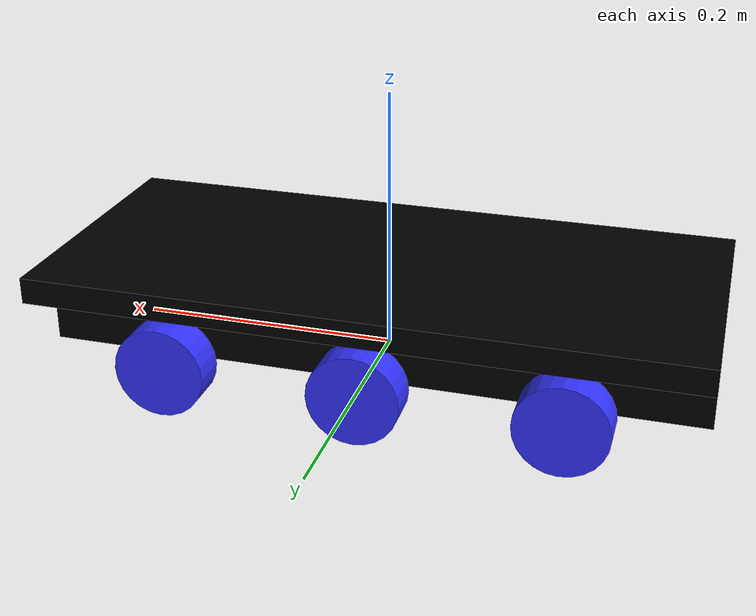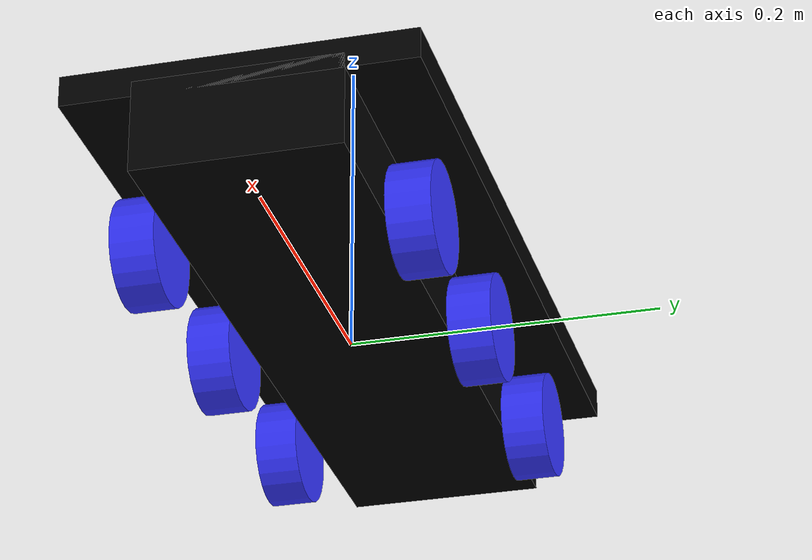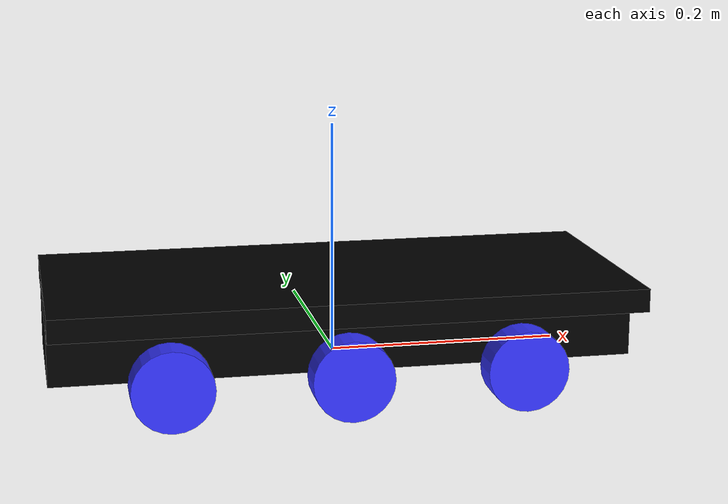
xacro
<?xml version="1.0"?>
<robot xmlns:xacro="http://www.ros.org/wiki/xacro">

    <xacro:include filename="inertial_macros.xacro" />
    <xacro:include filename="pulse_gazebo.xacro" />

    <!-- Farben -->

    <material name="white">
        <color rgba="1 1 1 1" />
    </material>

    <material name="black">
        <color rgba="0 0 0 1" />
    </material>

    <material name="red">
        <color rgba="1 0 0 1" />
    </material>

    <material name="blue">
        <color rgba="0.2 0.2 1 1" />
    </material>

    <material name="yellow">
        <color rgba="1 1 0 1" />
    </material>

    <material name="orange">
        <color rgba="1 0.3 0.1 1" />
    </material>

    <material name="green">
        <color rgba="0.0 1.0 0.0 1.0" />
    </material>

    <!-- BASE LINK -->

    <link name="base_link">

    </link>
    <!-- CHASSIS LINK -->
    <joint name="cassis_joint" type="fixed">
        <parent link="base_link" />
        <child link="chassis" />
        <origin xyz="-0.25 0.0 0.0" />
    </joint>

    <link name="chassis">
        <visual>
            <origin xyz="0.25 0.0 0.03" />
            <geometry>
                <box size="0.5 0.13 0.06" />
            </geometry>
            <material name="black" />
        </visual>
        <collision>
            <origin xyz="0.25 0.0 0.03" />
            <geometry>
                <box size="0.5 0.13 0.06" />
            </geometry>
        </collision>
        <xacro:inertial_box mass="0.3" x="0.5" y="0.13" z="0.06">
            <origion xyz="0.0 0.0 0.0" rpy="0.0 0.0 0.0" />
        </xacro:inertial_box>
    </link>

    <gazebo reference="chassis">
        <material>Gazebo/Black</material>
    </gazebo>

    <joint name="cassis_top_joint" type="fixed">
        <parent link="chassis" />
        <child link="chassis_top" />
        <origin xyz="0.0 0.0 0.0" />
    </joint>

    <link name="chassis_top">
        <visual>
            <origin xyz="0.25 0 0.06" />
            <geometry>
                <box size="0.5 0.22 0.02" />
            </geometry>
            <material name="black" />
        </visual>
        <collision>
            <origin xyz="0.25 0 0.06" />
            <geometry>
                <box size="0.5 0.22 0.02" />
            </geometry>
        </collision>
        <xacro:inertial_box mass="0.1" x="0.5" y="0.22" z="0.02">
            <origion xyz="0.0 0.0 0.0" rpy="0.0 0.0 0.0" />
        </xacro:inertial_box>
    </link>

    <gazebo reference="chassis_top">
        <material>Gazebo/Black</material>
    </gazebo>

    <!-- LEFT WHEEL LINK  Section-->

    <joint name="left_wheel_joint" type="continuous">
        <origin xyz="0.0 0.085 0.0" rpy="-${pi/2} 0.0 0.0" />
        <parent link="base_link" />
        <child link="left_wheel" />
        <axis xyz="0.0 0.0 1.0" />
        <limit lower="0.0" upper="0.0" effort="0.0" velocity="0.0" />
    </joint>

    <link name="left_wheel">
        <visual>
            <geometry>
                <cylinder radius="0.035" length="0.028" />
            </geometry>
            <material name="blue" />
        </visual>
        <collision>
            <geometry>
                <sphere radius="0.035" />
            </geometry>
        </collision>
        <xacro:inertial_cylinder mass="0.1" length="0.028" radius="0.035">
            <origin xyz="0.0 0.0 0.0" rpy="0.0 0.0 0.0" />
        </xacro:inertial_cylinder>
    </link>

    <joint name="left_wheel_joint_f" type="fixed">
        <origin xyz="0.15 0.085 0.0" rpy="-${pi/2} 0.0 0.0" />
        <parent link="base_link" />
        <child link="left_wheel_f" />
    </joint>

    <link name="left_wheel_f">
        <visual>
            <geometry>
                <cylinder radius="0.035" length="0.028" />
            </geometry>
            <material name="blue" />
        </visual>
        <collision>
            <geometry>
                <sphere radius="0.035" />
            </geometry>
        </collision>
        <xacro:inertial_cylinder mass="0.1" length="0.028" radius="0.035">
            <origin xyz="0.0 0.0 0.0" rpy="0.0 0.0 0.0" />
        </xacro:inertial_cylinder>
    </link>

    <joint name="left_wheel_joint_r" type="fixed">
        <origin xyz="-0.15 0.085 0.0" rpy="-${pi/2} 0.0 0.0" />
        <parent link="base_link" />
        <child link="left_wheel_r" />
    </joint>

    <link name="left_wheel_r">
        <visual>
            <geometry>
                <cylinder radius="0.035" length="0.028" />
            </geometry>
            <material name="blue" />
        </visual>
        <collision>
            <geometry>
                <sphere radius="0.035" />
            </geometry>
        </collision>
        <xacro:inertial_cylinder mass="0.1" length="0.028" radius="0.035">
            <origin xyz="0.0 0.0 0.0" rpy="0.0 0.0 0.0" />
        </xacro:inertial_cylinder>
    </link>

    <!-- RIGHT WHEEL LINK -->
    <joint name="right_wheel_joint" type="continuous">
        <origin xyz="0.0 -0.085 0.0" rpy="${pi/2} 0.0 0.0" />
        <parent link="base_link" />
        <child link="right_wheel" />
        <axis xyz="0.0 0.0 -1.0" />
        <limit lower="0.0" upper="0.0" effort="0.0" velocity="0.0" />
    </joint>

    <link name="right_wheel">
        <visual>
            <geometry>
                <cylinder radius="0.035" length="0.028" />
            </geometry>
            <material name="blue" />
        </visual>
        <collision>
            <geometry>
                <sphere radius="0.035" />
            </geometry>
        </collision>
        <xacro:inertial_cylinder mass="0.1" length="0.028" radius="0.035">
            <origin xyz="0.0 0.0 0.0" rpy="0.0 0.0 0.0" />
        </xacro:inertial_cylinder>
    </link>

    <joint name="right_wheel_joint_f" type="fixed">
        <origin xyz="0.15 -0.085 0.0" rpy="${pi/2} 0.0 0.0" />
        <parent link="base_link" />
        <child link="right_wheel_f" />
    </joint>

    <link name="right_wheel_f">
        <visual>
            <geometry>
                <cylinder radius="0.035" length="0.028" />
            </geometry>
            <material name="blue" />
        </visual>
        <collision>
            <geometry>
                <sphere radius="0.035" />
            </geometry>
        </collision>
        <xacro:inertial_cylinder mass="0.1" length="0.028" radius="0.035">
            <origin xyz="0.0 0.0 0.0" rpy="0.0 0.0 0.0" />
        </xacro:inertial_cylinder>
    </link>

    <joint name="right_wheel_joint_r" type="fixed">
        <origin xyz="-0.15 -0.085 0.0" rpy="${pi/2} 0.0 0.0" />
        <parent link="base_link" />
        <child link="right_wheel_r" />
    </joint>

    <link name="right_wheel_r">
        <visual>
            <geometry>
                <cylinder radius="0.035" length="0.028" />
            </geometry>
            <material name="blue" />
        </visual>
        <collision>
            <geometry>
                <sphere radius="0.035" />
            </geometry>
        </collision>
        <xacro:inertial_cylinder mass="0.1" length="0.028" radius="0.035">
            <origin xyz="0.0 0.0 0.0" rpy="0.0 0.0 0.0" />
        </xacro:inertial_cylinder>
    </link>

</robot>
